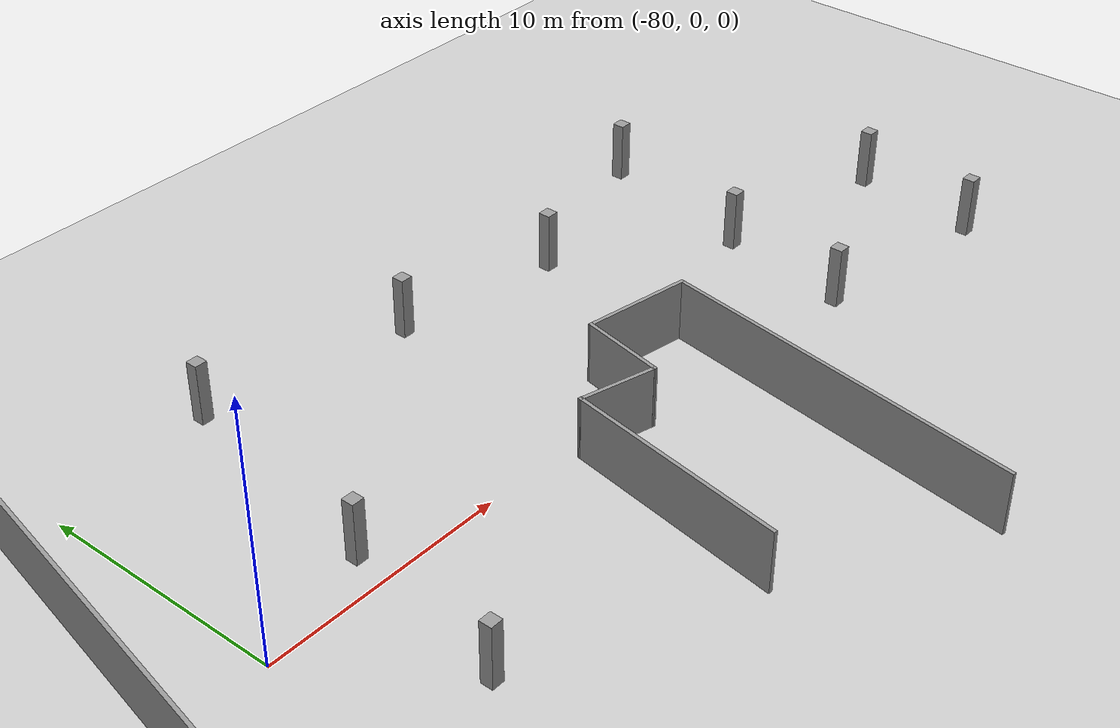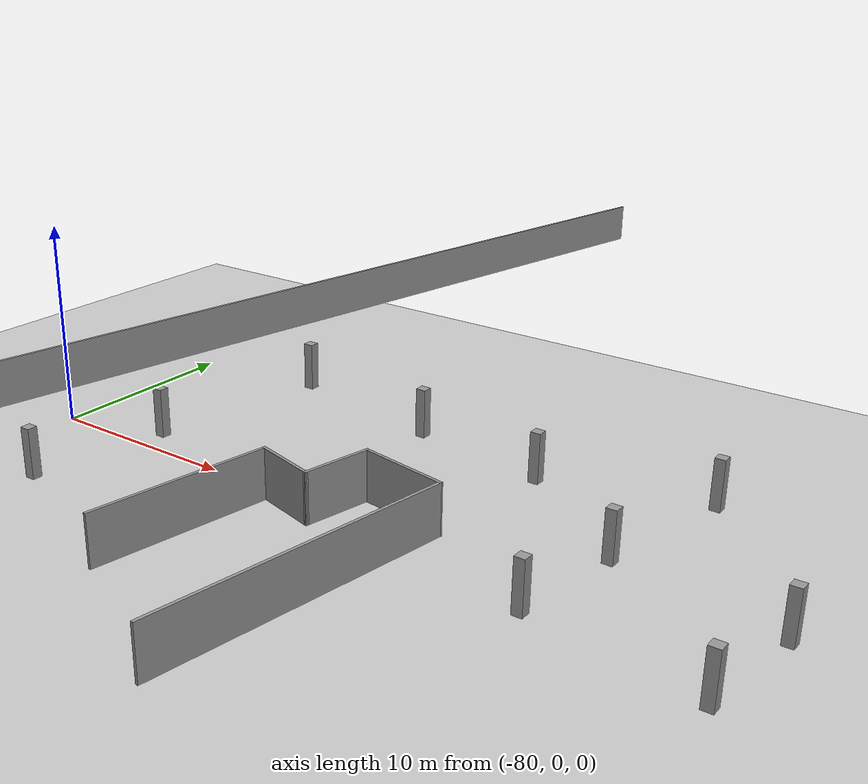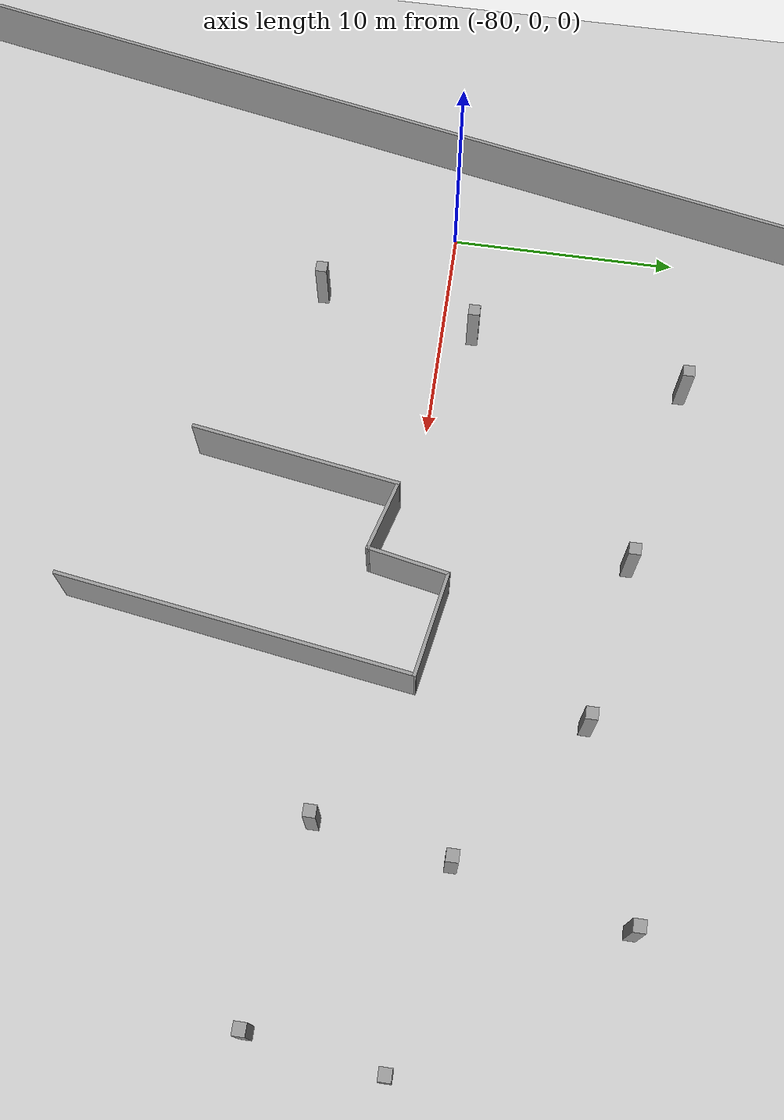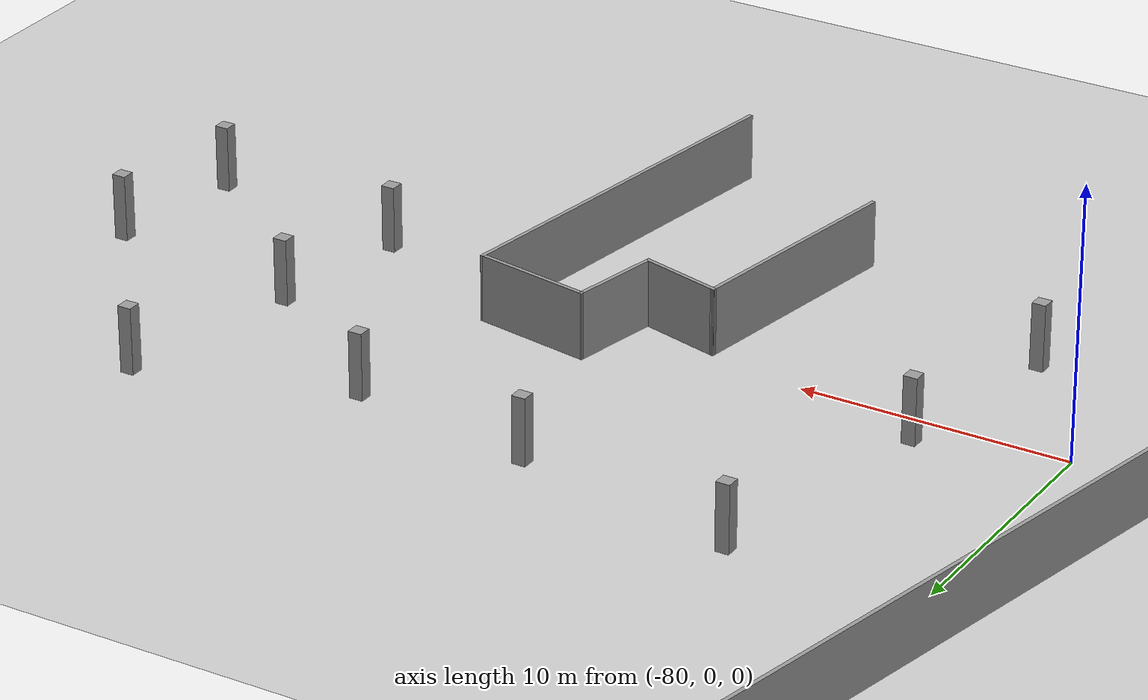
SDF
<sdf version="1.6">
 <world name="default">
  <model name="ground_plane">
   <static>1</static>
   <link name="link">
    <collision name="collision">
     <geometry><plane><normal>0 0 1</normal><size>100 100</size></plane></geometry>
     <surface>
      <contact><collide_bitmask>65535</collide_bitmask></contact>
      <friction><ode><mu>100</mu><mu2>50</mu2></ode></friction>
     </surface>
    </collision>
    <visual name="visual">
     <cast_shadows>0</cast_shadows>
     <geometry><plane><normal>0 0 1</normal><size>100 100</size></plane></geometry>
     <material>
      <script><uri>file://media/materials/scripts/gazebo.material</uri><name>Gazebo/Grey</name></script>
     </material>
    </visual>
   </link>
  </model>
  <model name="parking_area_big_2">
   <pose>0.028574 -0.058085 0 0 -0 0</pose>
   <link name="Wall_152">
    <collision name="Wall_152_Collision">
     <geometry><box><size>0.51 0.5 2.5</size></box></geometry>
     <pose>0 0 1.25 0 -0 0</pose>
    </collision>
    <visual name="Wall_152_Visual">
     <pose>0 0 1.25 0 -0 0</pose>
     <geometry><box><size>0.51 0.5 2.5</size></box></geometry>
     <material>
      <script><uri>file://media/materials/scripts/gazebo.material</uri><name>Gazebo/Grey</name></script>
      <ambient>1 1 1 1</ambient>
     </material>
     <meta><layer>0</layer></meta>
    </visual>
    <pose>-57.6618 8.08292 0 0 -0 0</pose>
   </link>
   <link name="Wall_154">
    <collision name="Wall_154_Collision">
     <geometry><box><size>0.51 0.5 2.5</size></box></geometry>
     <pose>0 0 1.25 0 -0 0</pose>
    </collision>
    <visual name="Wall_154_Visual">
     <pose>0 0 1.25 0 -0 0</pose>
     <geometry><box><size>0.51 0.5 2.5</size></box></geometry>
     <material>
      <script><uri>file://media/materials/scripts/gazebo.material</uri><name>Gazebo/Grey</name></script>
      <ambient>1 1 1 1</ambient>
     </material>
     <meta><layer>0</layer></meta>
    </visual>
    <pose>-64.695 9.19521 0 0 -0 0</pose>
   </link>
   <link name="Wall_168">
    <collision name="Wall_168_Collision">
     <geometry><box><size>0.51 0.5 2.5</size></box></geometry>
     <pose>0 0 1.25 0 -0 0</pose>
    </collision>
    <visual name="Wall_168_Visual">
     <pose>0 0 1.25 0 -0 0</pose>
     <geometry><box><size>0.51 0.5 2.5</size></box></geometry>
     <material>
      <script><uri>file://media/materials/scripts/gazebo.material</uri><name>Gazebo/Grey</name></script>
      <ambient>1 1 1 1</ambient>
     </material>
     <meta><layer>0</layer></meta>
    </visual>
    <pose>-73.1803 10.8328 0 0 -0 0</pose>
   </link>
   <link name="Wall_170">
    <collision name="Wall_170_Collision">
     <geometry><box><size>0.51 0.5 2.5</size></box></geometry>
     <pose>0 0 1.25 0 -0 0</pose>
    </collision>
    <visual name="Wall_170_Visual">
     <pose>0 0 1.25 0 -0 0</pose>
     <geometry><box><size>0.51 0.5 2.5</size></box></geometry>
     <material>
      <script><uri>file://media/materials/scripts/gazebo.material</uri><name>Gazebo/Grey</name></script>
      <ambient>1 1 1 1</ambient>
     </material>
     <meta><layer>0</layer></meta>
    </visual>
    <pose>-50.017 10.4772 0 0 -0 0</pose>
   </link>
   <link name="Wall_199">
    <collision name="Wall_199_Collision">
     <geometry><box><size>0.51 0.5 2.5</size></box></geometry>
     <pose>0 0 1.25 0 -0 0</pose>
    </collision>
    <visual name="Wall_199_Visual">
     <pose>0 0 1.25 0 -0 0</pose>
     <geometry><box><size>0.51 0.5 2.5</size></box></geometry>
     <material>
      <script><uri>file://media/materials/scripts/gazebo.material</uri><name>Gazebo/Grey</name></script>
      <ambient>1 1 1 1</ambient>
     </material>
     <meta><layer>0</layer></meta>
    </visual>
    <pose>-43.7778 2.13144 0 0 -0 0</pose>
   </link>
   <link name="Wall_201">
    <collision name="Wall_201_Collision">
     <geometry><box><size>0.51 0.5 2.5</size></box></geometry>
     <pose>0 0 1.25 0 -0 0</pose>
    </collision>
    <visual name="Wall_201_Visual">
     <pose>0 0 1.25 0 -0 0</pose>
     <geometry><box><size>0.51 0.5 2.5</size></box></geometry>
     <material>
      <script><uri>file://media/materials/scripts/gazebo.material</uri><name>Gazebo/Grey</name></script>
      <ambient>1 1 1 1</ambient>
     </material>
     <meta><layer>0</layer></meta>
    </visual>
    <pose>-51.565 3.48997 0 0 -0 0</pose>
   </link>
   <link name="Wall_203">
    <collision name="Wall_203_Collision">
     <geometry><box><size>0.51 0.5 2.5</size></box></geometry>
     <pose>0 0 1.25 0 -0 0</pose>
    </collision>
    <visual name="Wall_203_Visual">
     <pose>0 0 1.25 0 -0 0</pose>
     <geometry><box><size>0.51 0.5 2.5</size></box></geometry>
     <material>
      <script><uri>file://media/materials/scripts/gazebo.material</uri><name>Gazebo/Grey</name></script>
      <ambient>1 1 1 1</ambient>
     </material>
     <meta><layer>0</layer></meta>
    </visual>
    <pose>-52.4516 -1.97817 0 0 -0 1.5708</pose>
   </link>
   <link name="Wall_205">
    <collision name="Wall_205_Collision">
     <geometry><box><size>0.51 0.5 2.5</size></box></geometry>
     <pose>0 0 1.25 0 -0 0</pose>
    </collision>
    <visual name="Wall_205_Visual">
     <pose>0 0 1.25 0 -0 0</pose>
     <geometry><box><size>0.51 0.5 2.5</size></box></geometry>
     <material>
      <script><uri>file://media/materials/scripts/gazebo.material</uri><name>Gazebo/Grey</name></script>
      <ambient>1 1 1 1</ambient>
     </material>
     <meta><layer>0</layer></meta>
    </visual>
    <pose>-44.5411 -3.1412 0 0 -0 0</pose>
   </link>
   <link name="Wall_213">
    <collision name="Wall_213_Collision">
     <geometry><box><size>4.56418 0.15 2.5</size></box></geometry>
     <pose>0 0 1.25 0 -0 0</pose>
    </collision>
    <visual name="Wall_213_Visual">
     <pose>0 0 1.25 0 -0 0</pose>
     <geometry><box><size>4.56418 0.15 2.5</size></box></geometry>
     <material>
      <script><uri>file://media/materials/scripts/gazebo.material</uri><name>Gazebo/Grey</name></script>
      <ambient>1 1 1 1</ambient>
     </material>
     <meta><layer>0</layer></meta>
    </visual>
    <pose>-60.3957 1.5281 0 0 -0 -0.170735</pose>
   </link>
   <link name="Wall_214">
    <collision name="Wall_214_Collision">
     <geometry><box><size>15.0783 0.15 2.5</size></box></geometry>
     <pose>0 0 1.25 0 -0 0</pose>
    </collision>
    <visual name="Wall_214_Visual">
     <pose>0 0 1.25 0 -0 0</pose>
     <geometry><box><size>15.0783 0.15 2.5</size></box></geometry>
     <material>
      <script><uri>file://media/materials/scripts/gazebo.material</uri><name>Gazebo/Grey</name></script>
      <ambient>1 1 1 1</ambient>
     </material>
     <meta><layer>0</layer></meta>
    </visual>
    <pose>-59.3254 -6.22883 0 0 -0 -1.71934</pose>
   </link>
   <link name="Wall_216">
    <collision name="Wall_216_Collision">
     <geometry><box><size>9.06283 0.15 2.5</size></box></geometry>
     <pose>0 0 1.25 0 -0 0</pose>
    </collision>
    <visual name="Wall_216_Visual">
     <pose>0 0 1.25 0 -0 0</pose>
     <geometry><box><size>9.06283 0.15 2.5</size></box></geometry>
     <material>
      <script><uri>file://media/materials/scripts/gazebo.material</uri><name>Gazebo/Grey</name></script>
      <ambient>1 1 1 1</ambient>
     </material>
     <meta><layer>0</layer></meta>
    </visual>
    <pose>-66.9483 -5.03675 0 0 -0 1.4101</pose>
   </link>
   <link name="Wall_217">
    <collision name="Wall_217_Collision">
     <geometry><box><size>3.25 0.15 2.5</size></box></geometry>
     <pose>0 0 1.25 0 -0 0</pose>
    </collision>
    <visual name="Wall_217_Visual">
     <pose>0 0 1.25 0 -0 0</pose>
     <geometry><box><size>3.25 0.15 2.5</size></box></geometry>
     <material>
      <script><uri>file://media/materials/scripts/gazebo.material</uri><name>Gazebo/Grey</name></script>
      <ambient>1 1 1 1</ambient>
     </material>
     <meta><layer>0</layer></meta>
    </visual>
    <pose>-64.7381 -1.03892 0 0 -0 -0.261799</pose>
   </link>
   <link name="Wall_218">
    <collision name="Wall_218_Collision">
     <geometry><box><size>3.55971 0.15 2.5</size></box></geometry>
     <pose>0 0 1.25 0 -0 0</pose>
    </collision>
    <visual name="Wall_218_Visual">
     <pose>0 0 1.25 0 -0 0</pose>
     <geometry><box><size>3.55971 0.15 2.5</size></box></geometry>
     <material>
      <script><uri>file://media/materials/scripts/gazebo.material</uri><name>Gazebo/Grey</name></script>
      <ambient>1 1 1 1</ambient>
     </material>
     <meta><layer>0</layer></meta>
    </visual>
    <pose>-62.9058 0.231503 0 0 -0 1.37294</pose>
   </link>
   <link name="Wall_224">
    <collision name="Wall_224_Collision">
     <geometry><box><size>0.51 0.5 2.5</size></box></geometry>
     <pose>0 0 1.25 0 -0 0</pose>
    </collision>
    <visual name="Wall_224_Visual">
     <pose>0 0 1.25 0 -0 0</pose>
     <geometry><box><size>0.51 0.5 2.5</size></box></geometry>
     <material>
      <script><uri>file://media/materials/scripts/gazebo.material</uri><name>Gazebo/Grey</name></script>
      <ambient>1 1 1 1</ambient>
     </material>
     <meta><layer>0</layer></meta>
    </visual>
    <pose>-74.8967 1.45512 0 0 -0 0</pose>
   </link>
   <link name="Wall_226">
    <collision name="Wall_226_Collision">
     <geometry><box><size>0.51 0.5 2.5</size></box></geometry>
     <pose>0 0 1.25 0 -0 0</pose>
    </collision>
    <visual name="Wall_226_Visual">
     <pose>0 0 1.25 0 -0 0</pose>
     <geometry><box><size>0.51 0.5 2.5</size></box></geometry>
     <material>
      <script><uri>file://media/materials/scripts/gazebo.material</uri><name>Gazebo/Grey</name></script>
      <ambient>1 1 1 1</ambient>
     </material>
     <meta><layer>0</layer></meta>
    </visual>
    <pose>-76.1672 -5.45537 0 0 -0 0</pose>
   </link>
   <link name="Wall_9">
    <collision name="Wall_9_Collision">
     <geometry><box><size>102.41 0.15 2.5</size></box></geometry>
     <pose>0 0 1.25 0 -0 0</pose>
    </collision>
    <visual name="Wall_9_Visual">
     <pose>0 0 1.25 0 -0 0</pose>
     <geometry><box><size>102.41 0.15 2.5</size></box></geometry>
     <material>
      <script><uri>file://media/materials/scripts/gazebo.material</uri><name>Gazebo/Grey</name></script>
      <ambient>1 1 1 1</ambient>
     </material>
     <meta><layer>0</layer></meta>
    </visual>
    <pose>-84.2194 -0.914318 0 0 -0 1.37243</pose>
   </link>
   <static>1</static>
  </model>
 </world>
</sdf>
